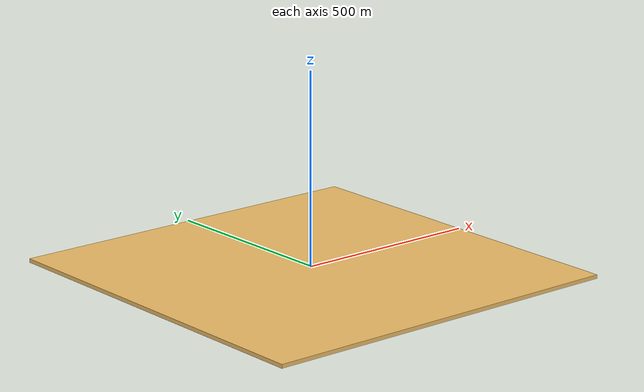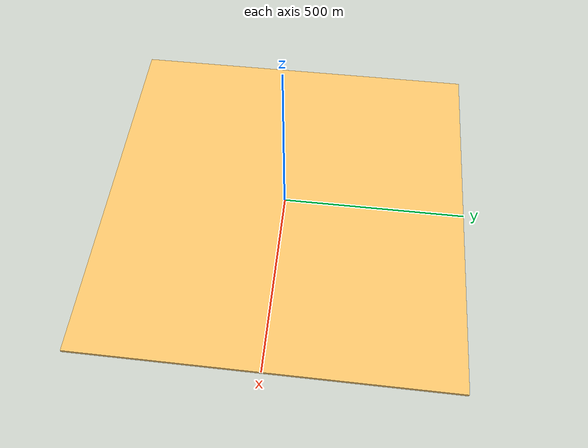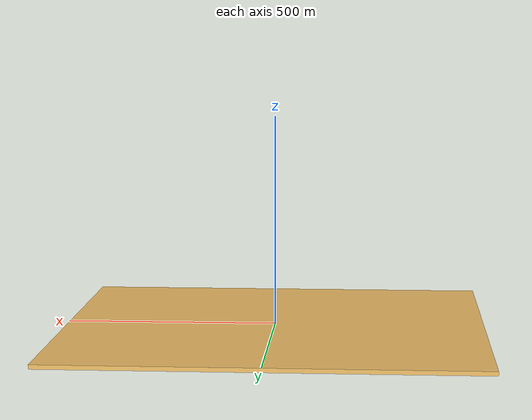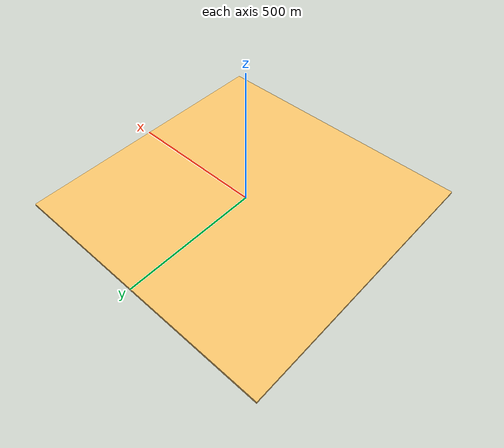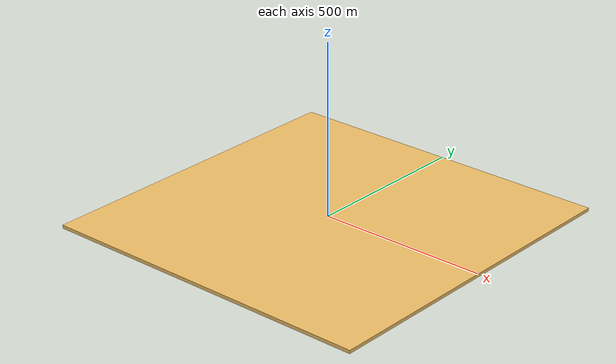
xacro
<?xml version="1.0"?>

<robot xmlns:xacro="http://www.ros.org/wiki/xacro"
 name="CartPole">

  <link name="world">
    <visual>
      <origin xyz="0 0 -5" rpy="0 0 0" />
      <geometry>
        <box size="1000 1000 10" />
      </geometry>
      <material name="world_mat">
        <color rgba="0.93 .74 .4 1" />
      </material>
    </visual>
  </link>

  <link name="cart">
    <inertial>
      <origin xyz="0 0 .25" rpy="0 0 0" />
      <mass value="10" />
      <inertia ixx="0" ixy="0" ixz="0" iyy="0" iyz="0" izz="0" />
    </inertial>
    <visual>
      <origin xyz="0 0 .25" rpy="0 0 0" />
      <geometry>
        <box size=".6 .3 .3" />
      </geometry>
      <material name="cart_mat1">
        <color rgba="0 1 0 1" />
      </material>
    </visual>
    <visual>
      <origin xyz=".15 0 .025" rpy="0 0 0" />
      <geometry>
        <sphere radius=".05" />
      </geometry>
      <material name="cart_mat2">
        <color rgba="0 0 0 1" />
      </material>
    </visual>
    <visual>
      <origin xyz="-.15 0 .025" rpy="0 0 0" />
      <geometry>
        <sphere radius=".05" />
      </geometry>
      <material name="cart_mat3">
        <color rgba="0 0 0 1" />
      </material>
    </visual>
  </link>

  <link name="pole">
    <inertial>
      <origin xyz="0 0 -.5" rpy="0 0 0" />
      <mass value="1" />
      <inertia ixx="0" ixy="0" ixz="0" iyy="0" iyz="0" izz="0" />
    </inertial>
    <visual>
      <origin xyz="0 0 -.25" rpy="0 0 0" />
      <geometry>
         <cylinder length=".5" radius=".01" />
      </geometry>
      <material name="pole_mat1">
        <color rgba="1 0 0 1" />
      </material>
    </visual>
    <visual>
      <origin xyz="0 0 -.5" rpy="0 0 0" />
      <geometry>
         <sphere radius=".05" />
      </geometry>
      <material name="pole_mat2">
        <color rgba="0 0 1 1" />
      </material>
    </visual>
  </link>

  <joint name="x" type="prismatic">
    <parent link="world" />
    <child link="cart" />
    <origin xyz="0 0 0" />
    <axis xyz="1 0 0" />
    <limit lower="-2" upper="2" effort="5" velocity="100" />
    <dynamics damping="0" friction="0" />
  </joint>

  <joint name="theta" type="continuous">
    <parent link="cart" />
    <child link="pole" />
    <origin xyz="0 0 .25" />
    <axis xyz="0 -1 0" />
    <dynamics damping="0" friction="0" />
  </joint>

  <transmission type="SimpleTransmission" name="cart_force">
    <type>transmission_interface/SimpleTransmission</type>
    <actuator name="force">
      <hardwareInterface>EffortJointInterface</hardwareInterface>
    </actuator>
    <joint name="x">
      <hardwareInterface>hardware_interface/EffortJointInterface</hardwareInterface>
    </joint>
    <mechanicalReduction>1</mechanicalReduction>
  </transmission>
</robot>
